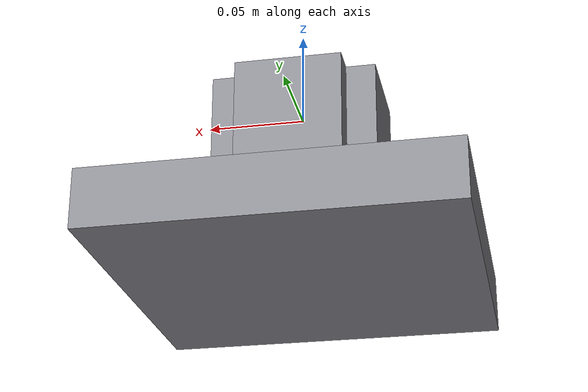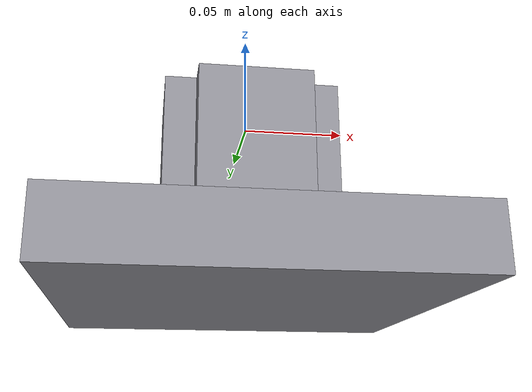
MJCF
<mujoco model="insertion_hole">
    <compiler angle="radian" autolimits="true" />
    <default>
        <default class="visual">
            <geom type="box" contype="0" conaffinity="0" group="2" />
        </default>
        <default class="collision">
            <geom type="box" group="3" condim="4"
                friction="0.3 0.005 0.0001" solref="0.010 1.2"
                solimp="0.9 0.95 0.002" margin="0.001" priority="0" />
        </default>
    </default>

    <asset>
        <material name="fixture_body" rgba="0.55 0.55 0.58 1" reflectance="0.05" />
        <material name="fixture_opening" rgba="0.15 0.15 0.15 1" reflectance="0.0" />
    </asset>

    <worldbody>
        <!-- Non-colliding base plate purely so the fixture reads visually as
             sitting on/attached to something, same convention as
             sanding_panel.xml's "stand" body. -->
        <body name="stand">
            <geom class="visual" pos="0 0 -0.075" size="0.09 0.09 0.015"
                material="fixture_body" />
        </body>

        <body name="socket" pos="0 0 0">
            <!-- +x wall -->
            <geom name="socket_wall_px_visual" class="visual" material="fixture_body"
                size="0.015 0.027 0.0325" pos="0.027 0 -0.0175" />
            <geom name="socket_wall_px" class="collision" size="0.015 0.027 0.0325"
                pos="0.027 0 -0.0175" />
            <!-- -x wall -->
            <geom name="socket_wall_nx_visual" class="visual" material="fixture_body"
                size="0.015 0.027 0.0325" pos="-0.027 0 -0.0175" />
            <geom name="socket_wall_nx" class="collision" size="0.015 0.027 0.0325"
                pos="-0.027 0 -0.0175" />
            <!-- +y wall -->
            <geom name="socket_wall_py_visual" class="visual" material="fixture_body"
                size="0.027 0.015 0.0325" pos="0 0.027 -0.0175" />
            <geom name="socket_wall_py" class="collision" size="0.027 0.015 0.0325"
                pos="0 0.027 -0.0175" />
            <!-- -y wall -->
            <geom name="socket_wall_ny_visual" class="visual" material="fixture_body"
                size="0.027 0.015 0.0325" pos="0 -0.027 -0.0175" />
            <geom name="socket_wall_ny" class="collision" size="0.027 0.015 0.0325"
                pos="0 -0.027 -0.0175" />
            <!-- Floor: stops the peg at depth=0.05 m below the entrance.
                 Dark "fixture_opening" visual so the bottom of the bore
                 reads as a hole once you can see down into it. -->
            <geom name="socket_floor_visual" class="visual" material="fixture_opening"
                size="0.027 0.027 0.005" pos="0 0 -0.055" />
            <geom name="socket_floor" class="collision" size="0.027 0.027 0.005"
                pos="0 0 -0.055" />

            <site name="hole_entrance" pos="0 0 0" group="3" />
            <site name="hole_bottom" pos="0 0 -0.05" group="3" />
        </body>
    </worldbody>
</mujoco>
